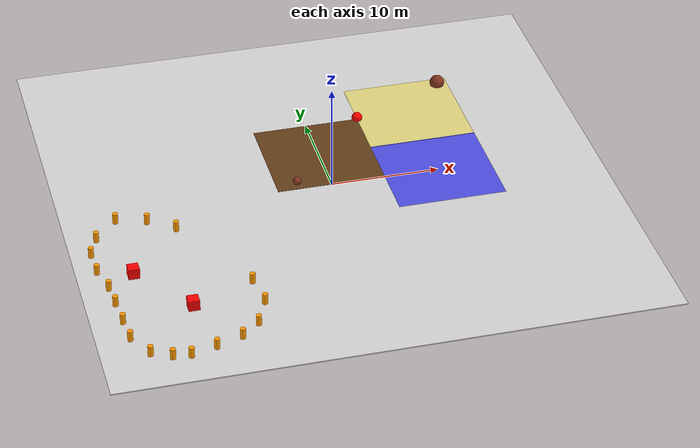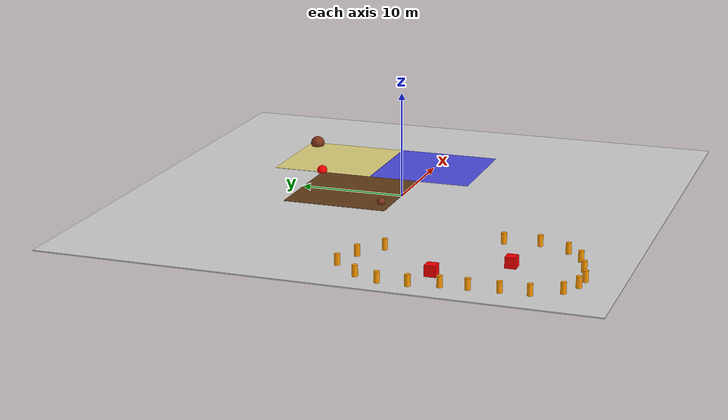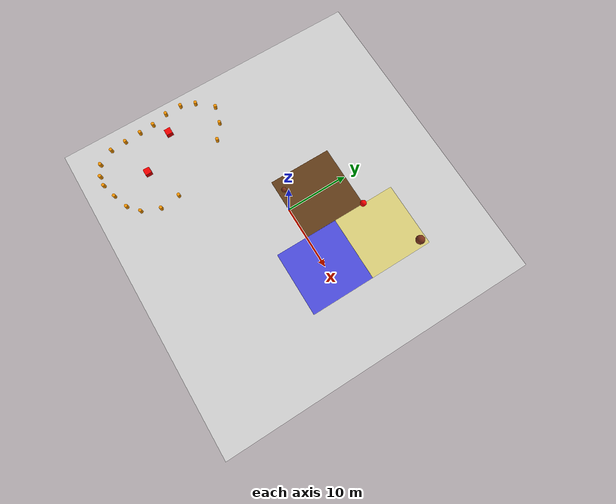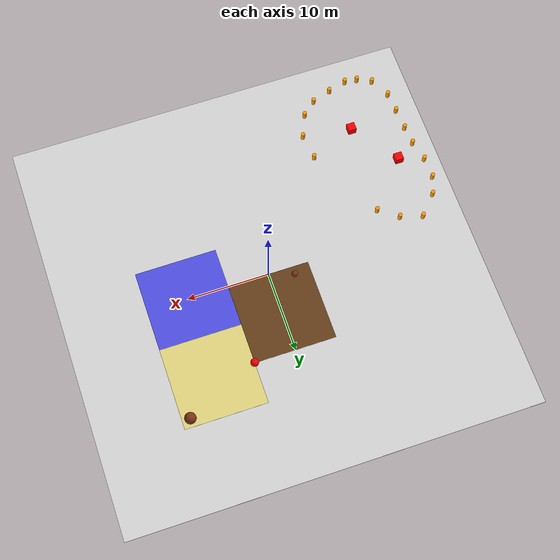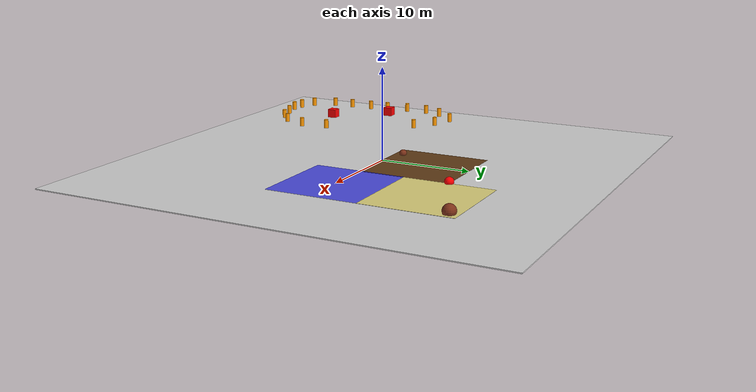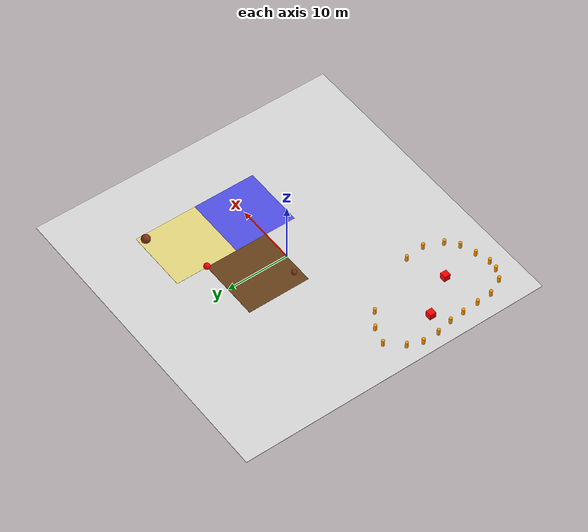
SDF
<sdf version="1.9">
 <world name="amphibot_world">
  <gravity>0 0 -9.8</gravity>
  <magnetic_field>6e-06 2.3e-05 -4.2e-05</magnetic_field>
  <atmosphere type="adiabatic"/>
  <physics type="ode">
   <max_step_size>0.001</max_step_size>
   <real_time_factor>1</real_time_factor>
   <real_time_update_rate>1000</real_time_update_rate>
  </physics>
  <scene><ambient>0.4 0.4 0.4 1</ambient><background>0.7 0.7 0.7 1</background><shadows>true</shadows></scene>
  <model name="flat_ground">
   <static>true</static>
   <link name="link">
    <collision name="collision">
     <geometry><box><size>50 50 0.1</size></box></geometry>
     <surface><friction><ode><mu>1</mu><mu2>1</mu2></ode></friction></surface>
    </collision>
    <visual name="visual">
     <geometry><box><size>50 50 0.1</size></box></geometry>
     <material><ambient>0.7 0.7 0.7 1</ambient><diffuse>0.85 0.85 0.85 1</diffuse></material>
    </visual>
    <pose>0 0 -0.05 0 -0 0</pose>
    <inertial>
     <mass>1</mass>
     <inertia><ixx>1</ixx><ixy>0</ixy><ixz>0</ixz><iyy>1</iyy><iyz>0</iyz><izz>1</izz></inertia>
    </inertial>
   </link>
  </model>
  <model name="water_patch">
   <static>true</static>
   <link name="link">
    <collision name="collision">
     <geometry><box><size>10 10 0.1</size></box></geometry>
     <surface><friction><ode><mu>0.01</mu><mu2>0.01</mu2></ode></friction></surface>
    </collision>
    <visual name="visual">
     <geometry><box><size>10 10 0.1</size></box></geometry>
     <material>
      <ambient>0 0 0.5 0.6</ambient>
      <diffuse>0 0 1 0.6</diffuse>
      <script><uri>file://media/materials/scripts/gazebo.material</uri><name>Gazebo/Water</name></script>
     </material>
    </visual>
    <pose>10 0 0 0 -0 0</pose>
    <inertial>
     <mass>1</mass>
     <inertia><ixx>1</ixx><ixy>0</ixy><ixz>0</ixz><iyy>1</iyy><iyz>0</iyz><izz>1</izz></inertia>
    </inertial>
   </link>
  </model>
  <model name="mud_patch">
   <static>true</static>
   <link name="link">
    <collision name="collision">
     <geometry><box><size>10 10 0.05</size></box></geometry>
     <surface>
      <friction><ode><mu>0.34999999999999998</mu><mu2>0.34999999999999998</mu2></ode></friction>
      <contact><ode><soft_cfm>0.01</soft_cfm><soft_erp>0.20000000000000001</soft_erp></ode></contact>
     </surface>
    </collision>
    <visual name="visual">
     <geometry><box><size>10 10 0.05</size></box></geometry>
     <material><ambient>0.3 0.2 0.1 1</ambient><diffuse>0.4 0.25 0.1 1</diffuse></material>
    </visual>
    <pose>0 5 0 0 -0 0</pose>
    <inertial>
     <mass>1</mass>
     <inertia><ixx>1</ixx><ixy>0</ixy><ixz>0</ixz><iyy>1</iyy><iyz>0</iyz><izz>1</izz></inertia>
    </inertial>
   </link>
  </model>
  <model name="sand_patch">
   <static>true</static>
   <link name="link">
    <collision name="collision">
     <geometry><box><size>10 10 0.05</size></box></geometry>
     <surface><friction><ode><mu>0.20000000000000001</mu><mu2>0.20000000000000001</mu2></ode></friction></surface>
    </collision>
    <visual name="visual">
     <geometry><box><size>10 10 0.05</size></box></geometry>
     <material><ambient>0.8 0.75 0.4 1</ambient><diffuse>0.9 0.85 0.5 1</diffuse></material>
    </visual>
    <pose>10 10 0 0 -0 0</pose>
    <inertial>
     <mass>1</mass>
     <inertia><ixx>1</ixx><ixy>0</ixy><ixz>0</ixz><iyy>1</iyy><iyz>0</iyz><izz>1</izz></inertia>
    </inertial>
   </link>
  </model>
  <model name="rock1">
   <static>true</static>
   <link name="link">
    <collision name="collision">
     <geometry><sphere><radius>0.5</radius></sphere></geometry>
     <surface><friction><ode><mu>0.90000000000000002</mu><mu2>0.90000000000000002</mu2></ode></friction></surface>
    </collision>
    <visual name="visual">
     <geometry><sphere><radius>0.5</radius></sphere></geometry>
     <material><ambient>0.6 0 0 1</ambient><diffuse>1 0 0 1</diffuse></material>
    </visual>
    <pose>5 10 0.2 0 -0 0</pose>
    <inertial>
     <mass>1</mass>
     <inertia><ixx>1</ixx><ixy>0</ixy><ixz>0</ixz><iyy>1</iyy><iyz>0</iyz><izz>1</izz></inertia>
    </inertial>
   </link>
  </model>
  <model name="rock2">
   <static>true</static>
   <link name="link">
    <collision name="collision">
     <geometry><sphere><radius>0.69999999999999996</radius></sphere></geometry>
     <surface><friction><ode><mu>0.90000000000000002</mu><mu2>0.90000000000000002</mu2></ode></friction></surface>
    </collision>
    <visual name="visual">
     <geometry><sphere><radius>0.69999999999999996</radius></sphere></geometry>
     <material><ambient>0.3 0.1 0.05 1</ambient><diffuse>0.5 0.2 0.1 1</diffuse></material>
    </visual>
    <pose>14 14 0.3 0 -0 0</pose>
    <inertial>
     <mass>1</mass>
     <inertia><ixx>1</ixx><ixy>0</ixy><ixz>0</ixz><iyy>1</iyy><iyz>0</iyz><izz>1</izz></inertia>
    </inertial>
   </link>
  </model>
  <model name="rock3">
   <static>true</static>
   <link name="link">
    <collision name="collision">
     <geometry><sphere><radius>0.40000000000000002</radius></sphere></geometry>
     <surface><friction><ode><mu>0.90000000000000002</mu><mu2>0.90000000000000002</mu2></ode></friction></surface>
    </collision>
    <visual name="visual">
     <geometry><sphere><radius>0.40000000000000002</radius></sphere></geometry>
     <material><ambient>0.3 0.1 0.05 1</ambient><diffuse>0.5 0.2 0.1 1</diffuse></material>
    </visual>
    <pose>-3 1 0.2 0 -0 0</pose>
    <inertial>
     <mass>1</mass>
     <inertia><ixx>1</ixx><ixy>0</ixy><ixz>0</ixz><iyy>1</iyy><iyz>0</iyz><izz>1</izz></inertia>
    </inertial>
   </link>
  </model>
  <model name="cylinder">
   <pose>-22.0695 -18.2875 0.5 0 -0 0</pose>
   <link name="cylinder_link">
    <inertial>
     <inertia>
      <ixx>0.14580000000000001</ixx>
      <ixy>0</ixy>
      <ixz>0</ixz>
      <iyy>0.14580000000000001</iyy>
      <iyz>0</iyz>
      <izz>0.125</izz>
     </inertia>
     <mass>5</mass>
    </inertial>
    <collision name="cylinder_collision">
     <geometry><cylinder><radius>0.25</radius><length>1</length></cylinder></geometry>
    </collision>
    <visual name="cylinder_visual">
     <geometry><cylinder><radius>0.25</radius><length>1</length></cylinder></geometry>
     <material>
      <ambient>1.0 0.4 0.0 1.0</ambient>
      <diffuse>1.0 0.6 0.0 1.0</diffuse>
      <specular>0.5 0.5 0.5 1.0</specular>
     </material>
    </visual>
   </link>
   <static>false</static>
  </model>
  <model name="cylinder_0">
   <pose>-20.8253 -20.7179 0.5 0 -0 0</pose>
   <link name="cylinder_link">
    <inertial>
     <inertia>
      <ixx>0.14580000000000001</ixx>
      <ixy>0</ixy>
      <ixz>0</ixz>
      <iyy>0.14580000000000001</iyy>
      <iyz>0</iyz>
      <izz>0.125</izz>
     </inertia>
     <mass>5</mass>
    </inertial>
    <collision name="cylinder_collision">
     <geometry><cylinder><radius>0.25</radius><length>1</length></cylinder></geometry>
    </collision>
    <visual name="cylinder_visual">
     <geometry><cylinder><radius>0.25</radius><length>1</length></cylinder></geometry>
     <material>
      <ambient>1.0 0.4 0.0 1.0</ambient>
      <diffuse>1.0 0.6 0.0 1.0</diffuse>
      <specular>0.5 0.5 0.5 1.0</specular>
     </material>
    </visual>
   </link>
   <static>false</static>
  </model>
  <model name="cylinder_1">
   <pose>-22.239 -15.815 0.5 0 -0 0</pose>
   <link name="cylinder_link">
    <inertial>
     <inertia>
      <ixx>0.14580000000000001</ixx>
      <ixy>0</ixy>
      <ixz>0</ixz>
      <iyy>0.14580000000000001</iyy>
      <iyz>0</iyz>
      <izz>0.125</izz>
     </inertia>
     <mass>5</mass>
    </inertial>
    <collision name="cylinder_collision">
     <geometry><cylinder><radius>0.25</radius><length>1</length></cylinder></geometry>
    </collision>
    <visual name="cylinder_visual">
     <geometry><cylinder><radius>0.25</radius><length>1</length></cylinder></geometry>
     <material>
      <ambient>1.0 0.4 0.0 1.0</ambient>
      <diffuse>1.0 0.6 0.0 1.0</diffuse>
      <specular>0.5 0.5 0.5 1.0</specular>
     </material>
    </visual>
   </link>
   <static>false</static>
  </model>
  <model name="cylinder_2">
   <pose>-22.3835 -13.1964 0.5 0 -0 0</pose>
   <link name="cylinder_link">
    <inertial>
     <inertia>
      <ixx>0.14580000000000001</ixx>
      <ixy>0</ixy>
      <ixz>0</ixz>
      <iyy>0.14580000000000001</iyy>
      <iyz>0</iyz>
      <izz>0.125</izz>
     </inertia>
     <mass>5</mass>
    </inertial>
    <collision name="cylinder_collision">
     <geometry><cylinder><radius>0.25</radius><length>1</length></cylinder></geometry>
    </collision>
    <visual name="cylinder_visual">
     <geometry><cylinder><radius>0.25</radius><length>1</length></cylinder></geometry>
     <material>
      <ambient>1.0 0.4 0.0 1.0</ambient>
      <diffuse>1.0 0.6 0.0 1.0</diffuse>
      <specular>0.5 0.5 0.5 1.0</specular>
     </material>
    </visual>
   </link>
   <static>false</static>
  </model>
  <model name="cylinder_3">
   <pose>-19.1003 -21.5773 0.5 0 -0 0</pose>
   <link name="cylinder_link">
    <inertial>
     <inertia>
      <ixx>0.14580000000000001</ixx>
      <ixy>0</ixy>
      <ixz>0</ixz>
      <iyy>0.14580000000000001</iyy>
      <iyz>0</iyz>
      <izz>0.125</izz>
     </inertia>
     <mass>5</mass>
    </inertial>
    <collision name="cylinder_collision">
     <geometry><cylinder><radius>0.25</radius><length>1</length></cylinder></geometry>
    </collision>
    <visual name="cylinder_visual">
     <geometry><cylinder><radius>0.25</radius><length>1</length></cylinder></geometry>
     <material>
      <ambient>1.0 0.4 0.0 1.0</ambient>
      <diffuse>1.0 0.6 0.0 1.0</diffuse>
      <specular>0.5 0.5 0.5 1.0</specular>
     </material>
    </visual>
   </link>
   <static>false</static>
  </model>
  <model name="cylinder_4">
   <pose>-17.5547 -21.7665 0.5 0 -0 0</pose>
   <link name="cylinder_link">
    <inertial>
     <inertia>
      <ixx>0.14580000000000001</ixx>
      <ixy>0</ixy>
      <ixz>0</ixz>
      <iyy>0.14580000000000001</iyy>
      <iyz>0</iyz>
      <izz>0.125</izz>
     </inertia>
     <mass>5</mass>
    </inertial>
    <collision name="cylinder_collision">
     <geometry><cylinder><radius>0.25</radius><length>1</length></cylinder></geometry>
    </collision>
    <visual name="cylinder_visual">
     <geometry><cylinder><radius>0.25</radius><length>1</length></cylinder></geometry>
     <material>
      <ambient>1.0 0.4 0.0 1.0</ambient>
      <diffuse>1.0 0.6 0.0 1.0</diffuse>
      <specular>0.5 0.5 0.5 1.0</specular>
     </material>
    </visual>
   </link>
   <static>false</static>
  </model>
  <model name="cylinder_5">
   <pose>-22.5443 -10.8675 0.5 0 -0 0</pose>
   <link name="cylinder_link">
    <inertial>
     <inertia>
      <ixx>0.14580000000000001</ixx>
      <ixy>0</ixy>
      <ixz>0</ixz>
      <iyy>0.14580000000000001</iyy>
      <iyz>0</iyz>
      <izz>0.125</izz>
     </inertia>
     <mass>5</mass>
    </inertial>
    <collision name="cylinder_collision">
     <geometry><cylinder><radius>0.25</radius><length>1</length></cylinder></geometry>
    </collision>
    <visual name="cylinder_visual">
     <geometry><cylinder><radius>0.25</radius><length>1</length></cylinder></geometry>
     <material>
      <ambient>1.0 0.4 0.0 1.0</ambient>
      <diffuse>1.0 0.6 0.0 1.0</diffuse>
      <specular>0.5 0.5 0.5 1.0</specular>
     </material>
    </visual>
   </link>
   <static>false</static>
  </model>
  <model name="cylinder_6">
   <pose>-15.2525 -21.1267 0.5 0 -0 0</pose>
   <link name="cylinder_link">
    <inertial>
     <inertia>
      <ixx>0.14580000000000001</ixx>
      <ixy>0</ixy>
      <ixz>0</ixz>
      <iyy>0.14580000000000001</iyy>
      <iyz>0</iyz>
      <izz>0.125</izz>
     </inertia>
     <mass>5</mass>
    </inertial>
    <collision name="cylinder_collision">
     <geometry><cylinder><radius>0.25</radius><length>1</length></cylinder></geometry>
    </collision>
    <visual name="cylinder_visual">
     <geometry><cylinder><radius>0.25</radius><length>1</length></cylinder></geometry>
     <material>
      <ambient>1.0 0.4 0.0 1.0</ambient>
      <diffuse>1.0 0.6 0.0 1.0</diffuse>
      <specular>0.5 0.5 0.5 1.0</specular>
     </material>
    </visual>
   </link>
   <static>false</static>
  </model>
  <model name="cylinder_7">
   <pose>-12.8668 -20.3152 0.5 0 -0 0</pose>
   <link name="cylinder_link">
    <inertial>
     <inertia>
      <ixx>0.14580000000000001</ixx>
      <ixy>0</ixy>
      <ixz>0</ixz>
      <iyy>0.14580000000000001</iyy>
      <iyz>0</iyz>
      <izz>0.125</izz>
     </inertia>
     <mass>5</mass>
    </inertial>
    <collision name="cylinder_collision">
     <geometry><cylinder><radius>0.25</radius><length>1</length></cylinder></geometry>
    </collision>
    <visual name="cylinder_visual">
     <geometry><cylinder><radius>0.25</radius><length>1</length></cylinder></geometry>
     <material>
      <ambient>1.0 0.4 0.0 1.0</ambient>
      <diffuse>1.0 0.6 0.0 1.0</diffuse>
      <specular>0.5 0.5 0.5 1.0</specular>
     </material>
    </visual>
   </link>
   <static>false</static>
  </model>
  <model name="cylinder_8">
   <pose>-11.1573 -18.8285 0.5 0 -0 0</pose>
   <link name="cylinder_link">
    <inertial>
     <inertia>
      <ixx>0.14580000000000001</ixx>
      <ixy>0</ixy>
      <ixz>0</ixz>
      <iyy>0.14580000000000001</iyy>
      <iyz>0</iyz>
      <izz>0.125</izz>
     </inertia>
     <mass>5</mass>
    </inertial>
    <collision name="cylinder_collision">
     <geometry><cylinder><radius>0.25</radius><length>1</length></cylinder></geometry>
    </collision>
    <visual name="cylinder_visual">
     <geometry><cylinder><radius>0.25</radius><length>1</length></cylinder></geometry>
     <material>
      <ambient>1.0 0.4 0.0 1.0</ambient>
      <diffuse>1.0 0.6 0.0 1.0</diffuse>
      <specular>0.5 0.5 0.5 1.0</specular>
     </material>
    </visual>
   </link>
   <static>false</static>
  </model>
  <model name="cylinder_9">
   <pose>-23.1242 -8.33158 0.5 0 -0 0</pose>
   <link name="cylinder_link">
    <inertial>
     <inertia>
      <ixx>0.14580000000000001</ixx>
      <ixy>0</ixy>
      <ixz>0</ixz>
      <iyy>0.14580000000000001</iyy>
      <iyz>0</iyz>
      <izz>0.125</izz>
     </inertia>
     <mass>5</mass>
    </inertial>
    <collision name="cylinder_collision">
     <geometry><cylinder><radius>0.25</radius><length>1</length></cylinder></geometry>
    </collision>
    <visual name="cylinder_visual">
     <geometry><cylinder><radius>0.25</radius><length>1</length></cylinder></geometry>
     <material>
      <ambient>1.0 0.4 0.0 1.0</ambient>
      <diffuse>1.0 0.6 0.0 1.0</diffuse>
      <specular>0.5 0.5 0.5 1.0</specular>
     </material>
    </visual>
   </link>
   <static>false</static>
  </model>
  <model name="cylinder_10">
   <pose>-9.96552 -16.0374 0.5 0 -0 0</pose>
   <link name="cylinder_link">
    <inertial>
     <inertia>
      <ixx>0.14580000000000001</ixx>
      <ixy>0</ixy>
      <ixz>0</ixz>
      <iyy>0.14580000000000001</iyy>
      <iyz>0</iyz>
      <izz>0.125</izz>
     </inertia>
     <mass>5</mass>
    </inertial>
    <collision name="cylinder_collision">
     <geometry><cylinder><radius>0.25</radius><length>1</length></cylinder></geometry>
    </collision>
    <visual name="cylinder_visual">
     <geometry><cylinder><radius>0.25</radius><length>1</length></cylinder></geometry>
     <material>
      <ambient>1.0 0.4 0.0 1.0</ambient>
      <diffuse>1.0 0.6 0.0 1.0</diffuse>
      <specular>0.5 0.5 0.5 1.0</specular>
     </material>
    </visual>
   </link>
   <static>false</static>
  </model>
  <model name="cylinder_11">
   <pose>-10.3407 -12.8781 0.5 0 -0 0</pose>
   <link name="cylinder_link">
    <inertial>
     <inertia>
      <ixx>0.14580000000000001</ixx>
      <ixy>0</ixy>
      <ixz>0</ixz>
      <iyy>0.14580000000000001</iyy>
      <iyz>0</iyz>
      <izz>0.125</izz>
     </inertia>
     <mass>5</mass>
    </inertial>
    <collision name="cylinder_collision">
     <geometry><cylinder><radius>0.25</radius><length>1</length></cylinder></geometry>
    </collision>
    <visual name="cylinder_visual">
     <geometry><cylinder><radius>0.25</radius><length>1</length></cylinder></geometry>
     <material>
      <ambient>1.0 0.4 0.0 1.0</ambient>
      <diffuse>1.0 0.6 0.0 1.0</diffuse>
      <specular>0.5 0.5 0.5 1.0</specular>
     </material>
    </visual>
   </link>
   <static>false</static>
  </model>
  <model name="cylinder_13">
   <pose>-15.1593 -3.61085 0.5 0 -0 0</pose>
   <link name="cylinder_link">
    <inertial>
     <inertia>
      <ixx>0.14580000000000001</ixx>
      <ixy>0</ixy>
      <ixz>0</ixz>
      <iyy>0.14580000000000001</iyy>
      <iyz>0</iyz>
      <izz>0.125</izz>
     </inertia>
     <mass>5</mass>
    </inertial>
    <collision name="cylinder_collision">
     <geometry><cylinder><radius>0.25</radius><length>1</length></cylinder></geometry>
    </collision>
    <visual name="cylinder_visual">
     <geometry><cylinder><radius>0.25</radius><length>1</length></cylinder></geometry>
     <material>
      <ambient>1.0 0.4 0.0 1.0</ambient>
      <diffuse>1.0 0.6 0.0 1.0</diffuse>
      <specular>0.5 0.5 0.5 1.0</specular>
     </material>
    </visual>
   </link>
   <static>false</static>
  </model>
  <model name="cylinder_14">
   <pose>-17.4606 -1.90937 0.5 0 -0 0</pose>
   <link name="cylinder_link">
    <inertial>
     <inertia>
      <ixx>0.14580000000000001</ixx>
      <ixy>0</ixy>
      <ixz>0</ixz>
      <iyy>0.14580000000000001</iyy>
      <iyz>0</iyz>
      <izz>0.125</izz>
     </inertia>
     <mass>5</mass>
    </inertial>
    <collision name="cylinder_collision">
     <geometry><cylinder><radius>0.25</radius><length>1</length></cylinder></geometry>
    </collision>
    <visual name="cylinder_visual">
     <geometry><cylinder><radius>0.25</radius><length>1</length></cylinder></geometry>
     <material>
      <ambient>1.0 0.4 0.0 1.0</ambient>
      <diffuse>1.0 0.6 0.0 1.0</diffuse>
      <specular>0.5 0.5 0.5 1.0</specular>
     </material>
    </visual>
   </link>
   <static>false</static>
  </model>
  <model name="cylinder_15">
   <pose>-20.1714 -1.13546 0.5 0 -0 0</pose>
   <link name="cylinder_link">
    <inertial>
     <inertia>
      <ixx>0.14580000000000001</ixx>
      <ixy>0</ixy>
      <ixz>0</ixz>
      <iyy>0.14580000000000001</iyy>
      <iyz>0</iyz>
      <izz>0.125</izz>
     </inertia>
     <mass>5</mass>
    </inertial>
    <collision name="cylinder_collision">
     <geometry><cylinder><radius>0.25</radius><length>1</length></cylinder></geometry>
    </collision>
    <visual name="cylinder_visual">
     <geometry><cylinder><radius>0.25</radius><length>1</length></cylinder></geometry>
     <material>
      <ambient>1.0 0.4 0.0 1.0</ambient>
      <diffuse>1.0 0.6 0.0 1.0</diffuse>
      <specular>0.5 0.5 0.5 1.0</specular>
     </material>
    </visual>
   </link>
   <static>false</static>
  </model>
  <model name="cylinder_16">
   <pose>-22.3225 -3.50597 0.5 0 -0 0</pose>
   <link name="cylinder_link">
    <inertial>
     <inertia>
      <ixx>0.14580000000000001</ixx>
      <ixy>0</ixy>
      <ixz>0</ixz>
      <iyy>0.14580000000000001</iyy>
      <iyz>0</iyz>
      <izz>0.125</izz>
     </inertia>
     <mass>5</mass>
    </inertial>
    <collision name="cylinder_collision">
     <geometry><cylinder><radius>0.25</radius><length>1</length></cylinder></geometry>
    </collision>
    <visual name="cylinder_visual">
     <geometry><cylinder><radius>0.25</radius><length>1</length></cylinder></geometry>
     <material>
      <ambient>1.0 0.4 0.0 1.0</ambient>
      <diffuse>1.0 0.6 0.0 1.0</diffuse>
      <specular>0.5 0.5 0.5 1.0</specular>
     </material>
    </visual>
   </link>
   <static>false</static>
  </model>
  <model name="cylinder_17">
   <pose>-23.1701 -5.71677 0.5 0 -0 0</pose>
   <link name="cylinder_link">
    <inertial>
     <inertia>
      <ixx>0.14580000000000001</ixx>
      <ixy>0</ixy>
      <ixz>0</ixz>
      <iyy>0.14580000000000001</iyy>
      <iyz>0</iyz>
      <izz>0.125</izz>
     </inertia>
     <mass>5</mass>
    </inertial>
    <collision name="cylinder_collision">
     <geometry><cylinder><radius>0.25</radius><length>1</length></cylinder></geometry>
    </collision>
    <visual name="cylinder_visual">
     <geometry><cylinder><radius>0.25</radius><length>1</length></cylinder></geometry>
     <material>
      <ambient>1.0 0.4 0.0 1.0</ambient>
      <diffuse>1.0 0.6 0.0 1.0</diffuse>
      <specular>0.5 0.5 0.5 1.0</specular>
     </material>
    </visual>
   </link>
   <static>false</static>
  </model>
  <model name="box">
   <pose>-16.0221 -15.1282 0.5 0 -0 0</pose>
   <link name="box_link">
    <inertial>
     <inertia><ixx>0.16666</ixx><ixy>0</ixy><ixz>0</ixz><iyy>0.16666</iyy><iyz>0</iyz><izz>0.16666</izz></inertia>
     <mass>5</mass>
    </inertial>
    <collision name="box_collision"><geometry><box><size>1 1 1</size></box></geometry></collision>
    <visual name="box_visual">
     <geometry><box><size>1 1 1</size></box></geometry>
     <material>
      <ambient>0.8 0.0 0.0 1.0</ambient>
      <diffuse>1.0 0.0 0.0 1.0</diffuse>
      <specular>0.3 0.3 0.3 1.0</specular>
     </material>
    </visual>
   </link>
   <static>false</static>
  </model>
  <model name="box_0">
   <pose>-20.1118 -9.39922 0.5 0 -0 0</pose>
   <link name="box_link">
    <inertial>
     <inertia><ixx>0.16666</ixx><ixy>0</ixy><ixz>0</ixz><iyy>0.16666</iyy><iyz>0</iyz><izz>0.16666</izz></inertia>
     <mass>1</mass>
    </inertial>
    <collision name="box_collision"><geometry><box><size>1 1 1</size></box></geometry></collision>
    <visual name="box_visual">
     <geometry><box><size>1 1 1</size></box></geometry>
     <material>
      <ambient>0.8 0.0 0.0 1.0</ambient>
      <diffuse>1.0 0.0 0.0 1.0</diffuse>
      <specular>0.3 0.3 0.3 1.0</specular>
     </material>
    </visual>
   </link>
   <static>false</static>
  </model>
  <light name="sun" type="directional">
   <pose>0 0 10 0 -0 0</pose>
   <intensity>1</intensity>
   <direction>-0.5 0.5 -1</direction>
   <diffuse>1 1 1 1</diffuse>
   <specular>0.1 0.1 0.1 1</specular>
   <attenuation>
    <range>1000</range>
    <linear>0.01</linear>
    <constant>0.90000000000000002</constant>
    <quadratic>0.001</quadratic>
   </attenuation>
   <spot><inner_angle>0</inner_angle><outer_angle>0</outer_angle><falloff>0</falloff></spot>
  </light>
 </world>
</sdf>
